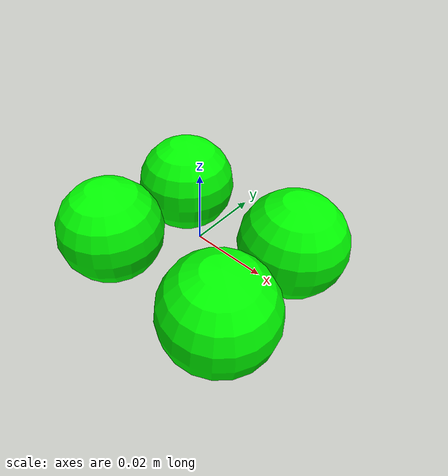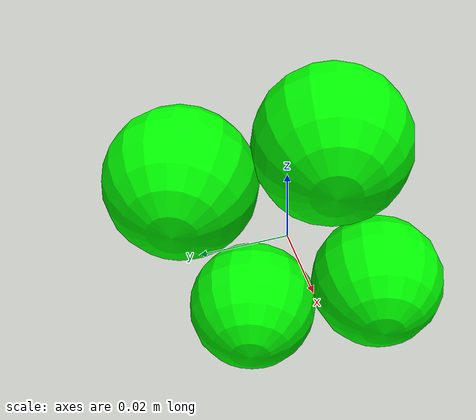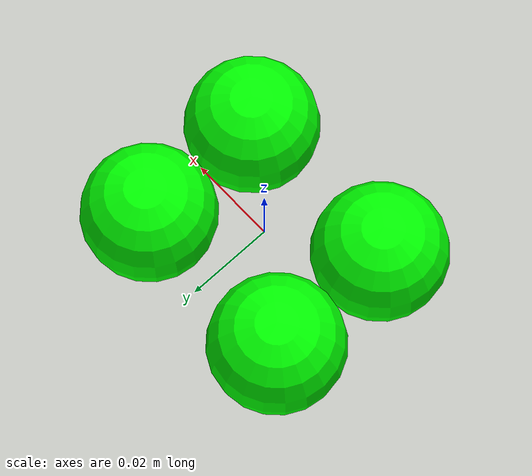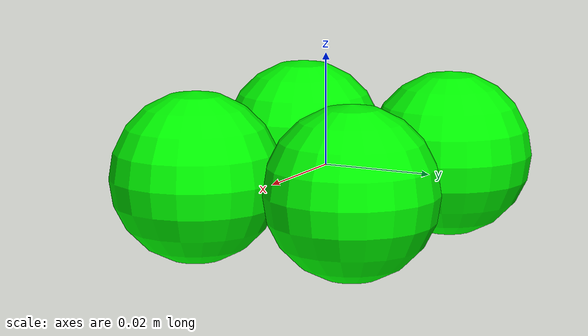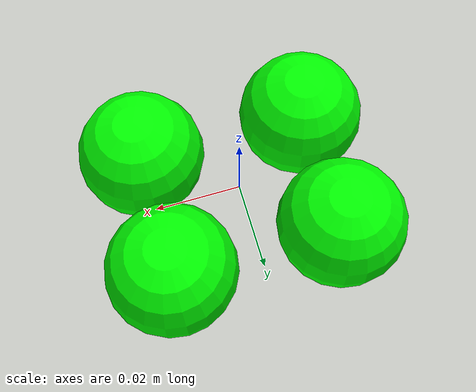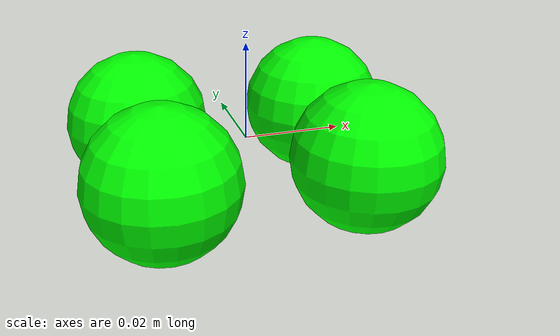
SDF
<?xml version="1.0"?>
<sdf version='1.6'>
  <model name='dumbbell'>

    <link name="dumbbell">
      <inertial>
        <mass>1</mass>
        <inertia>
          <ixx>0.05</ixx>
          <ixy>0</ixy>
          <ixz>0</ixz>
          <iyy>0.05</iyy>
          <iyz>0</iyz>
          <izz>0.05</izz>
        </inertia>
      </inertial>

      <pose>0 0 0 0 -0 0</pose>

      <visual>
        <pose>0.02 0.015 0 0 -0 0</pose>
        <geometry>
          <sphere>
            <radius>0.015</radius>
          </sphere>
        </geometry>
        <material name="green">
          <ambient> 0 1 0 1</ambient>
          <diffuse> 0 1 0 1</diffuse>
        </material>
      </visual>

      <visual>
        <pose>0.02 -0.015 0 0 -0 0</pose>
        <geometry>
          <sphere>
            <radius>0.015</radius>
          </sphere>
        </geometry>
        <material name="green">
          <ambient> 0 1 0 1</ambient>
          <diffuse> 0 1 0 1</diffuse>
        </material>
      </visual>

      <visual>
        <pose>-0.02 0.015 0 0 -0 0</pose>
        <geometry>
          <sphere>
            <radius>0.015</radius>
          </sphere>
        </geometry>
        <material name="green">
          <ambient> 0 1 0 1</ambient>
          <diffuse> 0 1 0 1</diffuse>
        </material>
      </visual>

      <visual>
        <pose>-0.02 -0.015 0 0 -0 0</pose>
        <geometry>
          <sphere>
            <radius>0.015</radius>
          </sphere>
        </geometry>
        <material name="green">
          <ambient> 0 1 0 1</ambient>
          <diffuse> 0 1 0 1</diffuse>
        </material>
      </visual>

      <collision>
        <pose>0.02 0.015 0 0 -0 0</pose>
        <geometry>
          <sphere>
            <radius>0.015</radius>
          </sphere>
        </geometry>
      </collision>

      <collision>
        <pose>0.02 -0.015 0 0 -0 0</pose>
        <geometry>
          <sphere>
            <radius>0.015</radius>
          </sphere>
        </geometry>
      </collision>

      <collision>
        <pose>-0.02 0.015 0 0 -0 0</pose>
        <geometry>
          <sphere>
            <radius>0.015</radius>
          </sphere>
        </geometry>
      </collision>

      <collision>
        <pose>-0.02 -0.015 0 0 -0 0</pose>
        <geometry>
          <sphere>
            <radius>0.015</radius>
          </sphere>
        </geometry>
      </collision>

    </link>

  </model>
</sdf>
